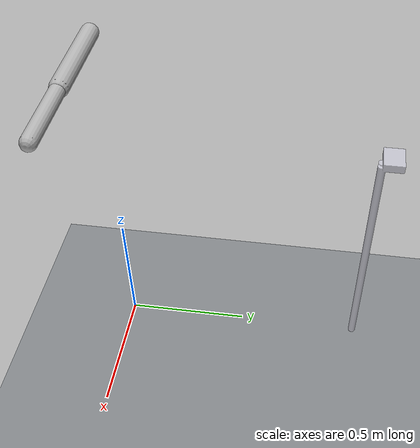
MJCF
<mujoco model="two_link_matlab_view">
  <compiler angle="degree" coordinate="local"/>
  <option timestep="0.001" gravity="0 0 -9.81"/>

  <asset>
    <mesh name="two_link_mesh" file="../assets/meshes/Two_link_model.obj" scale="0.01 0.01 0.01"/>
  </asset>

  <default>
    <joint damping="0.05" limited="true"/>
    <geom type="capsule" rgba="0.7 0.7 0.7 1" density="1200" friction="0.8 0.1 0.1"/>
  </default>

  <worldbody>
    <light pos="0 0 4" dir="0 0 -1" directional="true"/>
    <camera name="overview" pos="1.2 -1.2 1.8" xyaxes="0.707 0.707 0 -0.4 0.4 0.82"/>
    <geom name="ground" type="plane" pos="0 0 0" size="5 5 0.1" rgba="0.15 0.2 0.25 1"/>

    <!-- Articulated 2-link physics model -->
    <body name="shoulder" pos="0 0 1.4">
      <joint name="shoulder_pitch" type="hinge" axis="0 1 0" range="-120 120"/>
      <geom name="upperarm" fromto="0 0 0 0.32 0 0" size="0.03" density="1050"/>
      <body name="elbow" pos="0.32 0 0">
        <joint name="elbow_pitch" type="hinge" axis="0 1 0" range="0 150"/>
        <geom name="forearm" fromto="0 0 0 0.26 0 0" size="0.025" density="1050"/>
        <site name="hand" pos="0.26 0 0" size="0.02" rgba="0.2 0.2 1 1"/>
      </body>
    </body>

    <!-- Optional mesh-only visual companion -->
    <body name="matlab_mesh_preview" pos="0.0 1.0 1.0">
      <geom type="mesh" mesh="two_link_mesh" rgba="0.8 0.8 0.85 0.8" contype="0" conaffinity="0"/>
    </body>
  </worldbody>

  <actuator>
    <motor name="m_shoulder" joint="shoulder_pitch" ctrllimited="true" ctrlrange="-60 60" gear="1"/>
    <motor name="m_elbow" joint="elbow_pitch" ctrllimited="true" ctrlrange="-60 60" gear="1"/>
  </actuator>
</mujoco>
